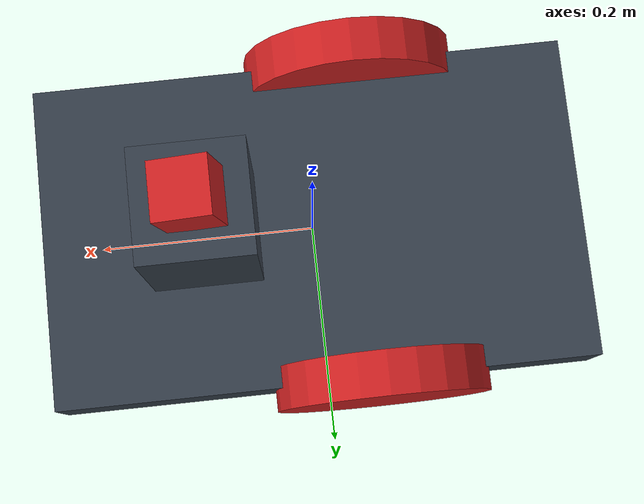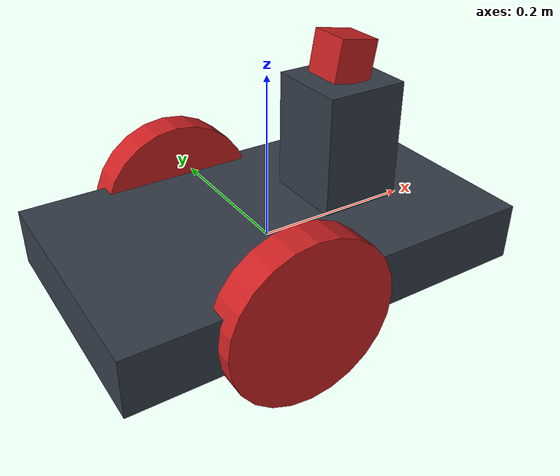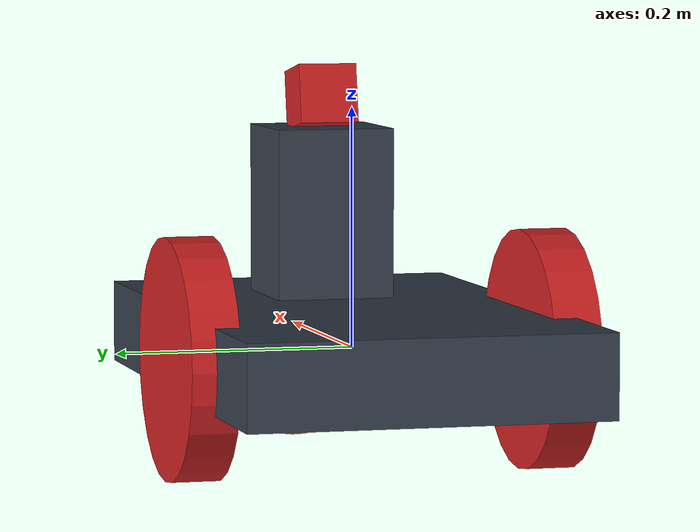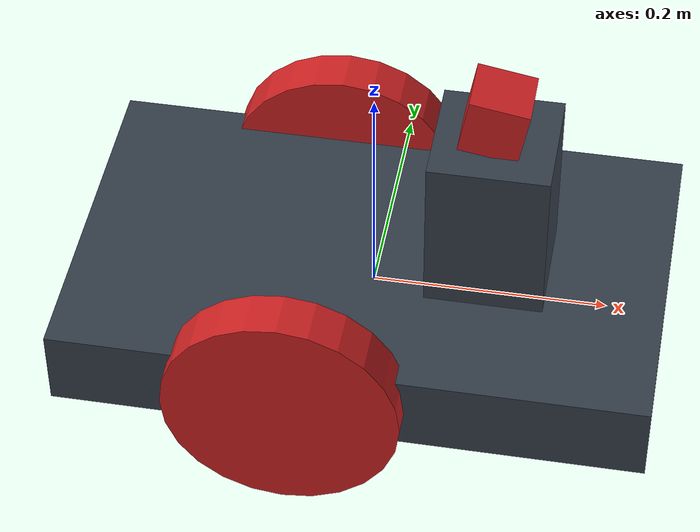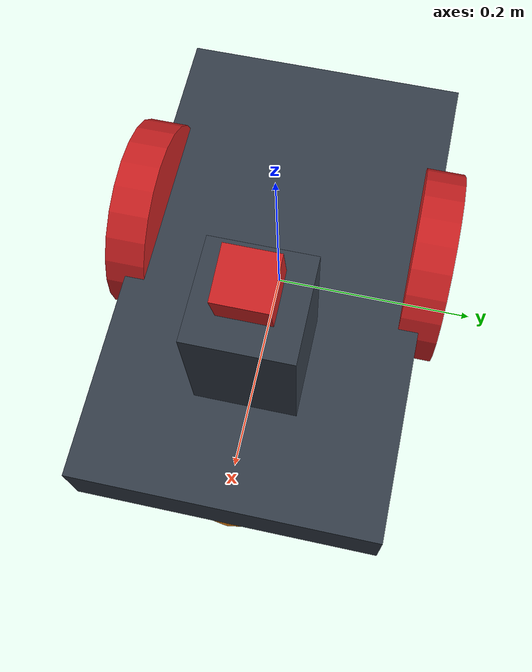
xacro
<?xml version="1.0"?>
<robot xmlns:xacro="http://www.ros.org/wiki/xacro" name="robot4_xacro">
<xacro:include filename="$(find erl_ass1_pkg)/urdf/macro_robot4.xacro"/>
<xacro:include filename="$(find erl_ass1_pkg)/urdf/robot4.gazebo"/>
  <!-- _______ROBOT MODEL______-->
  <link name="link_chassis">
    <!-- pose and inertial -->
    <pose>0 0 0.1 0 0 0</pose>
    <xacro:box_inertial mass="5" x="0.5" y="0.3" z="0.07" rpy="0 0 0" xyz="0 0 0.1"/>
    <!-- body -->
    <collision name="collision_chassis">
      <xacro:chassis_geometry />
    </collision>
    <visual>
      <origin rpy="0 0 0" xyz="0 0 0"/>
      <xacro:chassis_geometry />
      <material name="blue"/>
    </visual>
    <!-- caster front -->
    <collision name="caster_front_collision">
      <origin rpy=" 0 0 0" xyz="0.35 0 -0.05"/>
      <xacro:sphere_geometry rad="0.05" />
    </collision>
    <visual name="caster_front_visual">
      <origin rpy=" 0 0 0" xyz="0.2 0 -0.05"/>
      <xacro:sphere_geometry rad="0.05" />
    </visual>
  </link>

  <link name="link_right_wheel">
    <xacro:cyl_inertial mass="0.2" r="0.1" h="0.04" rpy="0 1.5707 1.5707" xyz="0 0 0"/>
    <collision name="link_right_wheel_collision">
      <origin rpy="0 1.5707 1.5707" xyz="0 0 0"/>
      <xacro:wheel_geometry />
    </collision>
    <visual name="link_right_wheel_visual">
      <origin rpy="0 1.5707 1.5707" xyz="0 0 0"/>
      <xacro:wheel_geometry />
      <material name="red"/>
    </visual>
  </link>

  <link name="link_left_wheel">
    <xacro:cyl_inertial mass="0.2" r="0.1" h="0.04" rpy="0 1.5707 1.5707" xyz="0 0 0"/>
    <collision name="link_left_wheel_collision">
      <origin rpy="0 1.5707 1.5707" xyz="0 0 0"/>
      <xacro:wheel_geometry />
    </collision>
    <visual name="link_left_wheel_visual">
      <origin rpy="0 1.5707 1.5707" xyz="0 0 0"/>
      <xacro:wheel_geometry />
      <material name="red"/>
    </visual>
  </link>

  <joint name="joint_right_wheel" type="continuous">
    <origin rpy="0 0 0" xyz="-0.05 0.15 0"/>
    <child link="link_right_wheel"/>
    <parent link="link_chassis"/>
    <axis rpy="0 0 0" xyz="0 1 0"/>
    <xacro:continuous />
  </joint>

  <joint name="joint_left_wheel" type="continuous">
    <origin rpy="0 0 0" xyz="-0.05 -0.15 0"/>
    <child link="link_left_wheel"/>
    <parent link="link_chassis"/>
    <axis rpy="0 0 0" xyz="0 1 0"/>
    <xacro:continuous />
  </joint>

  <link name="fixed_camera_link">
    <xacro:box_inertial mass="1e-5" x="0.1" y="0.1" z="0.25" rpy="0 0 0" xyz="0 0 0"/>
	  <collision>
	    <origin xyz="0 0 0" rpy="0 0 0"/>
	    <geometry>
        <box size="0.1 0.1 0.25"/>
      </geometry>
	  </collision>
	  <visual>
	    <origin xyz="0 0 0" rpy="0 0 0"/>
	    <geometry>
        <box size="0.1 0.1 0.25"/>
      </geometry>
	    <material name="blue"/>
	  </visual>
  </link>

  <joint name="fixed_camera_joint" type="fixed">
    <axis xyz="0 0 1" />
	  <origin xyz="0.1 0 0.0535" rpy="0 0 0"/>
	  <child link="fixed_camera_link"/>
	  <parent link="link_chassis"/>
  </joint>

  <link name="camera_link">
    <xacro:box_inertial mass="1e-5" x="0.05" y="0.05" z="0.05" rpy="0 0.174533 0" xyz="0 0 0.025"/>
	  <collision>
	    <origin xyz="0 0 0.025" rpy="0 0.174533 0"/>
	    <xacro:cube_geometry side="0.05" />
	  </collision>
	  <visual>
	    <origin xyz="0 0 0.025" rpy="0 0.174533 0"/>
	    <xacro:cube_geometry side="0.05" />
	    <material name="red"/>
	  </visual>
  </link>

  <joint name="continuous_camera_joint" type="continuous">
	    <axis xyz="0 0 1" />
	    <origin xyz="0 0 0.125" rpy="0 0 0"/>
	    <parent link="fixed_camera_link"/>
	    <child link="camera_link"/>
      <xacro:continuous />
	 </joint>
</robot>

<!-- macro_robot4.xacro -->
<robot xmlns:xacro="http://www.ros.org/wiki/xacro">
    <!-- VARIABILI -->
    <xacro:property name="length_wheel" value="0.04" />
    <xacro:property name="radius_wheel" value="0.1" />
    <xacro:property name="chassis_size" value="0.5 0.3 0.07" />
    <xacro:property name="rot_base_size" value="0.07 0.07 0.07" />

    <xacro:property name="zero_vct" value="0 0 0" />

    <!-- MACRO GEOMETRIA -->
    <xacro:macro name="wheel_geometry" params="">
        <geometry>
            <cylinder length="${length_wheel}" radius="${radius_wheel}"/>
        </geometry>
    </xacro:macro>

    <xacro:macro name="chassis_geometry" params="">
        <geometry>
            <box size="${chassis_size}"/>
        </geometry>
    </xacro:macro>

    <xacro:macro name="sphere_geometry" params="rad">
        <geometry>
            <sphere radius="${rad}"/>
        </geometry>
    </xacro:macro>

    <xacro:macro name="cube_geometry" params="side">
        <geometry>
            <box size="${side} ${side} ${side}"/>
        </geometry>
    </xacro:macro>

    <!-- MACRO INERZIA -->
    <xacro:macro name="shpere_inertial" params="mass rad rpy xyz">
        <inertial>
            <mass value="${mass}"/>
            <origin rpy="${rpy}" xyz="${xyz}"/>
            <inertia ixx="${0.4*mass*rad*rad}" ixy="0" ixz="0" iyy="${0.4*mass*rad*rad}" iyz="0" izz="${0.4*mass*rad*rad}"/>
        </inertial>
    </xacro:macro>

    <xacro:macro name="cyl_inertial" params="mass r h rpy xyz">
        <!-- size = rad height -->
        <inertial>
            <mass value="${mass}"/>
            <origin rpy="${rpy}" xyz="${xyz}"/>
            <inertia ixx="${0.0833*mass*h*h+0.25*mass*r*r}" ixy="0" ixz="0" iyy="${0.0833*mass*h*h+0.25*mass*r*r}" iyz="0" izz="${0.25*mass*r*r}"/>
        </inertial>
    </xacro:macro>

    <xacro:macro name="box_inertial" params="mass x y z rpy xyz">
        <!-- size = x y z -->
        <inertial>
            <mass value="${mass}"/>
            <origin rpy="${rpy}" xyz="${xyz}"/>
            <inertia ixx="${0.083*mass*(y*y+z*z)}" ixy="0" ixz="0" iyy="${0.083*mass*(x*x+z*z)}" iyz="0" izz="${0.083*mass*(x*x+y*y)}"/>
        </inertial>
    </xacro:macro>

    <!-- COLOR MACRO -->
    <material name="black">
        <color rgba="0.0 0.0 0.0 1.0"/>
    </material>
    <material name="blue">
        <color rgba="0.203125 0.23828125 0.28515625 1.0"/>
    </material>
    <material name="green">
        <color rgba="0.0 0.8 0.0 1.0"/>
    </material>
    <material name="grey">
        <color rgba="0.2 0.2 0.2 1.0"/>
    </material>
    <material name="orange">
        <color rgba="1.0 0.423529411765 0.0392156862745 1.0"/>
    </material>
    <material name="brown">
        <color rgba="0.870588235294 0.811764705882 0.764705882353 1.0"/>
    </material>
    <material name="red">
        <color rgba="0.80078125 0.12890625 0.1328125 1.0"/>
    </material>
    <material name="white">
        <color rgba="1.0 1.0 1.0 1.0"/>
    </material>

    <!-- JOINT MACRO -->
    <xacro:macro name="continuous">
        <limit effort="10000" velocity="1000"/>
        <joint_properties damping="1.0" friction="1.0"/>
    </xacro:macro>

    <xacro:macro name="revolute">
        <limit effort="1000.0" lower="0.0" upper="0.548" velocity="0.5"/>
        <joint_properties damping="1.0" friction="1.0"/>
    </xacro:macro>

</robot>
